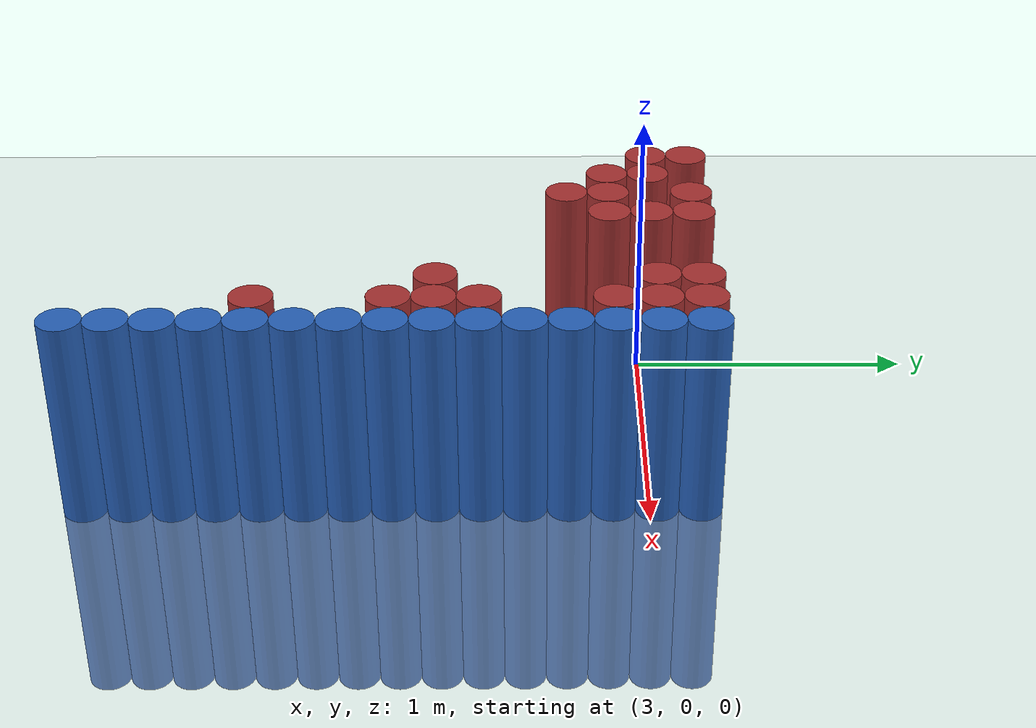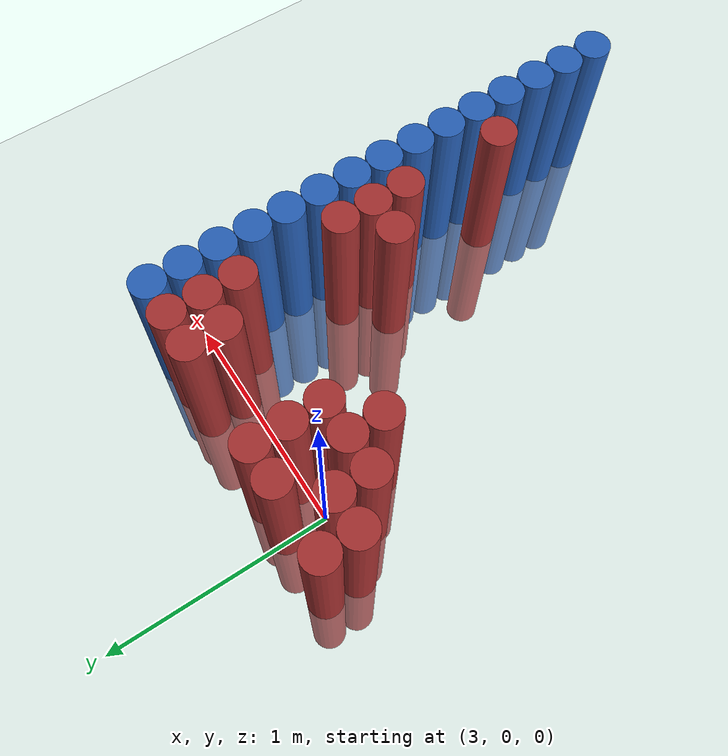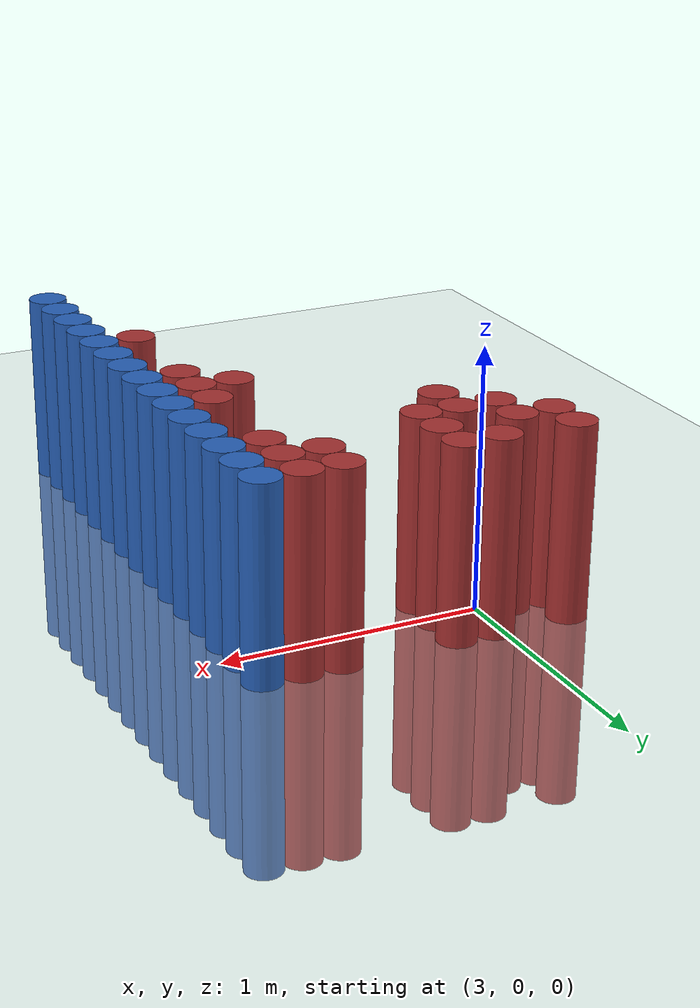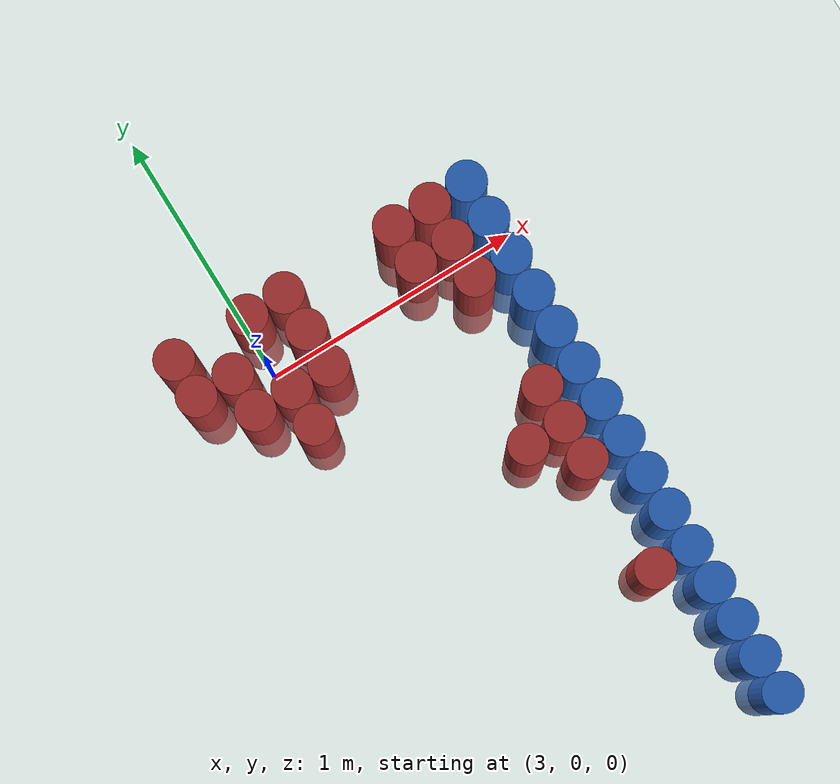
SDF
<sdf version="1.6">
 <world name="default">
  <model name="ground_plane">
   <static>1</static>
   <link name="link">
    <collision name="collision">
     <geometry><plane><normal>0 0 1</normal><size>100 100</size></plane></geometry>
     <surface><friction><ode><mu>100</mu><mu2>50</mu2></ode></friction></surface>
    </collision>
    <visual name="visual">
     <cast_shadows>0</cast_shadows>
     <geometry><plane><normal>0 0 1</normal><size>100 100</size></plane></geometry>
     <material>
      <script><uri>file://media/materials/scripts/gazebo.material</uri><name>Gazebo/Grey</name></script>
     </material>
    </visual>
   </link>
  </model>
  <model name="unit_cylinder_88">
   <static>1</static>
   <pose>3.925000 -1.925000 0.000000 0.000000 0.000000 0.000000</pose>
   <link name="link">
    <inertial>
     <mass>1</mass>
     <inertia><ixx>0.145833</ixx><ixy>0</ixy><ixz>0</ixz><iyy>0.145833</iyy><iyz>0</iyz><izz>0.125</izz></inertia>
    </inertial>
    <collision name="collision">
     <geometry><cylinder><radius>0.075000</radius><length>1.5</length></cylinder></geometry>
    </collision>
    <visual name="visual">
     <geometry><cylinder><radius>0.075000</radius><length>1.5</length></cylinder></geometry>
     <material>
      <ambient>0.152000 0.379000 0.720000 1</ambient>
      <diffuse>0.152000 0.379000 0.720000 1</diffuse>
     </material>
     <material>
      <script><name>Gazebo/Grey</name><uri>file://media/materials/scripts/gazebo.material</uri></script>
     </material>
    </visual>
   </link>
  </model>
  <model name="unit_cylinder_90">
   <static>1</static>
   <pose>3.925000 -1.775000 0.000000 0.000000 0.000000 0.000000</pose>
   <link name="link">
    <inertial>
     <mass>1</mass>
     <inertia><ixx>0.145833</ixx><ixy>0</ixy><ixz>0</ixz><iyy>0.145833</iyy><iyz>0</iyz><izz>0.125</izz></inertia>
    </inertial>
    <collision name="collision">
     <geometry><cylinder><radius>0.075000</radius><length>1.5</length></cylinder></geometry>
    </collision>
    <visual name="visual">
     <geometry><cylinder><radius>0.075000</radius><length>1.5</length></cylinder></geometry>
     <material>
      <ambient>0.152000 0.379000 0.720000 1</ambient>
      <diffuse>0.152000 0.379000 0.720000 1</diffuse>
     </material>
     <material>
      <script><name>Gazebo/Grey</name><uri>file://media/materials/scripts/gazebo.material</uri></script>
     </material>
    </visual>
   </link>
  </model>
  <model name="unit_cylinder_92">
   <static>1</static>
   <pose>3.925000 -1.625000 0.000000 0.000000 0.000000 0.000000</pose>
   <link name="link">
    <inertial>
     <mass>1</mass>
     <inertia><ixx>0.145833</ixx><ixy>0</ixy><ixz>0</ixz><iyy>0.145833</iyy><iyz>0</iyz><izz>0.125</izz></inertia>
    </inertial>
    <collision name="collision">
     <geometry><cylinder><radius>0.075000</radius><length>1.5</length></cylinder></geometry>
    </collision>
    <visual name="visual">
     <geometry><cylinder><radius>0.075000</radius><length>1.5</length></cylinder></geometry>
     <material>
      <ambient>0.152000 0.379000 0.720000 1</ambient>
      <diffuse>0.152000 0.379000 0.720000 1</diffuse>
     </material>
     <material>
      <script><name>Gazebo/Grey</name><uri>file://media/materials/scripts/gazebo.material</uri></script>
     </material>
    </visual>
   </link>
  </model>
  <model name="unit_cylinder_94">
   <static>1</static>
   <pose>3.925000 -1.475000 0.000000 0.000000 0.000000 0.000000</pose>
   <link name="link">
    <inertial>
     <mass>1</mass>
     <inertia><ixx>0.145833</ixx><ixy>0</ixy><ixz>0</ixz><iyy>0.145833</iyy><iyz>0</iyz><izz>0.125</izz></inertia>
    </inertial>
    <collision name="collision">
     <geometry><cylinder><radius>0.075000</radius><length>1.5</length></cylinder></geometry>
    </collision>
    <visual name="visual">
     <geometry><cylinder><radius>0.075000</radius><length>1.5</length></cylinder></geometry>
     <material>
      <ambient>0.152000 0.379000 0.720000 1</ambient>
      <diffuse>0.152000 0.379000 0.720000 1</diffuse>
     </material>
     <material>
      <script><name>Gazebo/Grey</name><uri>file://media/materials/scripts/gazebo.material</uri></script>
     </material>
    </visual>
   </link>
  </model>
  <model name="unit_cylinder_96">
   <static>1</static>
   <pose>3.925000 -1.325000 0.000000 0.000000 0.000000 0.000000</pose>
   <link name="link">
    <inertial>
     <mass>1</mass>
     <inertia><ixx>0.145833</ixx><ixy>0</ixy><ixz>0</ixz><iyy>0.145833</iyy><iyz>0</iyz><izz>0.125</izz></inertia>
    </inertial>
    <collision name="collision">
     <geometry><cylinder><radius>0.075000</radius><length>1.5</length></cylinder></geometry>
    </collision>
    <visual name="visual">
     <geometry><cylinder><radius>0.075000</radius><length>1.5</length></cylinder></geometry>
     <material>
      <ambient>0.152000 0.379000 0.720000 1</ambient>
      <diffuse>0.152000 0.379000 0.720000 1</diffuse>
     </material>
     <material>
      <script><name>Gazebo/Grey</name><uri>file://media/materials/scripts/gazebo.material</uri></script>
     </material>
    </visual>
   </link>
  </model>
  <model name="unit_cylinder_98">
   <static>1</static>
   <pose>3.925000 -1.175000 0.000000 0.000000 0.000000 0.000000</pose>
   <link name="link">
    <inertial>
     <mass>1</mass>
     <inertia><ixx>0.145833</ixx><ixy>0</ixy><ixz>0</ixz><iyy>0.145833</iyy><iyz>0</iyz><izz>0.125</izz></inertia>
    </inertial>
    <collision name="collision">
     <geometry><cylinder><radius>0.075000</radius><length>1.5</length></cylinder></geometry>
    </collision>
    <visual name="visual">
     <geometry><cylinder><radius>0.075000</radius><length>1.5</length></cylinder></geometry>
     <material>
      <ambient>0.152000 0.379000 0.720000 1</ambient>
      <diffuse>0.152000 0.379000 0.720000 1</diffuse>
     </material>
     <material>
      <script><name>Gazebo/Grey</name><uri>file://media/materials/scripts/gazebo.material</uri></script>
     </material>
    </visual>
   </link>
  </model>
  <model name="unit_cylinder_100">
   <static>1</static>
   <pose>3.925000 -1.025000 0.000000 0.000000 0.000000 0.000000</pose>
   <link name="link">
    <inertial>
     <mass>1</mass>
     <inertia><ixx>0.145833</ixx><ixy>0</ixy><ixz>0</ixz><iyy>0.145833</iyy><iyz>0</iyz><izz>0.125</izz></inertia>
    </inertial>
    <collision name="collision">
     <geometry><cylinder><radius>0.075000</radius><length>1.5</length></cylinder></geometry>
    </collision>
    <visual name="visual">
     <geometry><cylinder><radius>0.075000</radius><length>1.5</length></cylinder></geometry>
     <material>
      <ambient>0.152000 0.379000 0.720000 1</ambient>
      <diffuse>0.152000 0.379000 0.720000 1</diffuse>
     </material>
     <material>
      <script><name>Gazebo/Grey</name><uri>file://media/materials/scripts/gazebo.material</uri></script>
     </material>
    </visual>
   </link>
  </model>
  <model name="unit_cylinder_102">
   <static>1</static>
   <pose>3.925000 -0.875000 0.000000 0.000000 0.000000 0.000000</pose>
   <link name="link">
    <inertial>
     <mass>1</mass>
     <inertia><ixx>0.145833</ixx><ixy>0</ixy><ixz>0</ixz><iyy>0.145833</iyy><iyz>0</iyz><izz>0.125</izz></inertia>
    </inertial>
    <collision name="collision">
     <geometry><cylinder><radius>0.075000</radius><length>1.5</length></cylinder></geometry>
    </collision>
    <visual name="visual">
     <geometry><cylinder><radius>0.075000</radius><length>1.5</length></cylinder></geometry>
     <material>
      <ambient>0.152000 0.379000 0.720000 1</ambient>
      <diffuse>0.152000 0.379000 0.720000 1</diffuse>
     </material>
     <material>
      <script><name>Gazebo/Grey</name><uri>file://media/materials/scripts/gazebo.material</uri></script>
     </material>
    </visual>
   </link>
  </model>
  <model name="unit_cylinder_104">
   <static>1</static>
   <pose>3.925000 -0.725000 0.000000 0.000000 0.000000 0.000000</pose>
   <link name="link">
    <inertial>
     <mass>1</mass>
     <inertia><ixx>0.145833</ixx><ixy>0</ixy><ixz>0</ixz><iyy>0.145833</iyy><iyz>0</iyz><izz>0.125</izz></inertia>
    </inertial>
    <collision name="collision">
     <geometry><cylinder><radius>0.075000</radius><length>1.5</length></cylinder></geometry>
    </collision>
    <visual name="visual">
     <geometry><cylinder><radius>0.075000</radius><length>1.5</length></cylinder></geometry>
     <material>
      <ambient>0.152000 0.379000 0.720000 1</ambient>
      <diffuse>0.152000 0.379000 0.720000 1</diffuse>
     </material>
     <material>
      <script><name>Gazebo/Grey</name><uri>file://media/materials/scripts/gazebo.material</uri></script>
     </material>
    </visual>
   </link>
  </model>
  <model name="unit_cylinder_106">
   <static>1</static>
   <pose>3.925000 -0.575000 0.000000 0.000000 0.000000 0.000000</pose>
   <link name="link">
    <inertial>
     <mass>1</mass>
     <inertia><ixx>0.145833</ixx><ixy>0</ixy><ixz>0</ixz><iyy>0.145833</iyy><iyz>0</iyz><izz>0.125</izz></inertia>
    </inertial>
    <collision name="collision">
     <geometry><cylinder><radius>0.075000</radius><length>1.5</length></cylinder></geometry>
    </collision>
    <visual name="visual">
     <geometry><cylinder><radius>0.075000</radius><length>1.5</length></cylinder></geometry>
     <material>
      <ambient>0.152000 0.379000 0.720000 1</ambient>
      <diffuse>0.152000 0.379000 0.720000 1</diffuse>
     </material>
     <material>
      <script><name>Gazebo/Grey</name><uri>file://media/materials/scripts/gazebo.material</uri></script>
     </material>
    </visual>
   </link>
  </model>
  <model name="unit_cylinder_108">
   <static>1</static>
   <pose>3.925000 -0.425000 0.000000 0.000000 0.000000 0.000000</pose>
   <link name="link">
    <inertial>
     <mass>1</mass>
     <inertia><ixx>0.145833</ixx><ixy>0</ixy><ixz>0</ixz><iyy>0.145833</iyy><iyz>0</iyz><izz>0.125</izz></inertia>
    </inertial>
    <collision name="collision">
     <geometry><cylinder><radius>0.075000</radius><length>1.5</length></cylinder></geometry>
    </collision>
    <visual name="visual">
     <geometry><cylinder><radius>0.075000</radius><length>1.5</length></cylinder></geometry>
     <material>
      <ambient>0.152000 0.379000 0.720000 1</ambient>
      <diffuse>0.152000 0.379000 0.720000 1</diffuse>
     </material>
     <material>
      <script><name>Gazebo/Grey</name><uri>file://media/materials/scripts/gazebo.material</uri></script>
     </material>
    </visual>
   </link>
  </model>
  <model name="unit_cylinder_110">
   <static>1</static>
   <pose>3.925000 -0.275000 0.000000 0.000000 0.000000 0.000000</pose>
   <link name="link">
    <inertial>
     <mass>1</mass>
     <inertia><ixx>0.145833</ixx><ixy>0</ixy><ixz>0</ixz><iyy>0.145833</iyy><iyz>0</iyz><izz>0.125</izz></inertia>
    </inertial>
    <collision name="collision">
     <geometry><cylinder><radius>0.075000</radius><length>1.5</length></cylinder></geometry>
    </collision>
    <visual name="visual">
     <geometry><cylinder><radius>0.075000</radius><length>1.5</length></cylinder></geometry>
     <material>
      <ambient>0.152000 0.379000 0.720000 1</ambient>
      <diffuse>0.152000 0.379000 0.720000 1</diffuse>
     </material>
     <material>
      <script><name>Gazebo/Grey</name><uri>file://media/materials/scripts/gazebo.material</uri></script>
     </material>
    </visual>
   </link>
  </model>
  <model name="unit_cylinder_112">
   <static>1</static>
   <pose>3.925000 -0.125000 0.000000 0.000000 0.000000 0.000000</pose>
   <link name="link">
    <inertial>
     <mass>1</mass>
     <inertia><ixx>0.145833</ixx><ixy>0</ixy><ixz>0</ixz><iyy>0.145833</iyy><iyz>0</iyz><izz>0.125</izz></inertia>
    </inertial>
    <collision name="collision">
     <geometry><cylinder><radius>0.075000</radius><length>1.5</length></cylinder></geometry>
    </collision>
    <visual name="visual">
     <geometry><cylinder><radius>0.075000</radius><length>1.5</length></cylinder></geometry>
     <material>
      <ambient>0.152000 0.379000 0.720000 1</ambient>
      <diffuse>0.152000 0.379000 0.720000 1</diffuse>
     </material>
     <material>
      <script><name>Gazebo/Grey</name><uri>file://media/materials/scripts/gazebo.material</uri></script>
     </material>
    </visual>
   </link>
  </model>
  <model name="unit_cylinder_114">
   <static>1</static>
   <pose>3.925000 0.025000 0.000000 0.000000 0.000000 0.000000</pose>
   <link name="link">
    <inertial>
     <mass>1</mass>
     <inertia><ixx>0.145833</ixx><ixy>0</ixy><ixz>0</ixz><iyy>0.145833</iyy><iyz>0</iyz><izz>0.125</izz></inertia>
    </inertial>
    <collision name="collision">
     <geometry><cylinder><radius>0.075000</radius><length>1.5</length></cylinder></geometry>
    </collision>
    <visual name="visual">
     <geometry><cylinder><radius>0.075000</radius><length>1.5</length></cylinder></geometry>
     <material>
      <ambient>0.152000 0.379000 0.720000 1</ambient>
      <diffuse>0.152000 0.379000 0.720000 1</diffuse>
     </material>
     <material>
      <script><name>Gazebo/Grey</name><uri>file://media/materials/scripts/gazebo.material</uri></script>
     </material>
    </visual>
   </link>
  </model>
  <model name="unit_cylinder_116">
   <static>1</static>
   <pose>3.925000 0.175000 0.000000 0.000000 0.000000 0.000000</pose>
   <link name="link">
    <inertial>
     <mass>1</mass>
     <inertia><ixx>0.145833</ixx><ixy>0</ixy><ixz>0</ixz><iyy>0.145833</iyy><iyz>0</iyz><izz>0.125</izz></inertia>
    </inertial>
    <collision name="collision">
     <geometry><cylinder><radius>0.075000</radius><length>1.5</length></cylinder></geometry>
    </collision>
    <visual name="visual">
     <geometry><cylinder><radius>0.075000</radius><length>1.5</length></cylinder></geometry>
     <material>
      <ambient>0.152000 0.379000 0.720000 1</ambient>
      <diffuse>0.152000 0.379000 0.720000 1</diffuse>
     </material>
     <material>
      <script><name>Gazebo/Grey</name><uri>file://media/materials/scripts/gazebo.material</uri></script>
     </material>
    </visual>
   </link>
  </model>
  <model name="unit_cylinder_354">
   <static>1</static>
   <pose>2.725000 0.025000 0.000000 0.000000 0.000000 0.000000</pose>
   <link name="link">
    <inertial>
     <mass>1</mass>
     <inertia><ixx>0.145833</ixx><ixy>0</ixy><ixz>0</ixz><iyy>0.145833</iyy><iyz>0</iyz><izz>0.125</izz></inertia>
    </inertial>
    <collision name="collision">
     <geometry><cylinder><radius>0.075000</radius><length>1.5</length></cylinder></geometry>
    </collision>
    <visual name="visual">
     <geometry><cylinder><radius>0.075000</radius><length>1.5</length></cylinder></geometry>
     <material>
      <ambient>0.648000 0.192000 0.192000 1</ambient>
      <diffuse>0.648000 0.192000 0.192000 1</diffuse>
     </material>
     <material>
      <script><name>Gazebo/Grey</name><uri>file://media/materials/scripts/gazebo.material</uri></script>
     </material>
    </visual>
   </link>
  </model>
  <model name="unit_cylinder_355">
   <static>1</static>
   <pose>2.725000 0.175000 0.000000 0.000000 0.000000 0.000000</pose>
   <link name="link">
    <inertial>
     <mass>1</mass>
     <inertia><ixx>0.145833</ixx><ixy>0</ixy><ixz>0</ixz><iyy>0.145833</iyy><iyz>0</iyz><izz>0.125</izz></inertia>
    </inertial>
    <collision name="collision">
     <geometry><cylinder><radius>0.075000</radius><length>1.5</length></cylinder></geometry>
    </collision>
    <visual name="visual">
     <geometry><cylinder><radius>0.075000</radius><length>1.5</length></cylinder></geometry>
     <material>
      <ambient>0.648000 0.192000 0.192000 1</ambient>
      <diffuse>0.648000 0.192000 0.192000 1</diffuse>
     </material>
     <material>
      <script><name>Gazebo/Grey</name><uri>file://media/materials/scripts/gazebo.material</uri></script>
     </material>
    </visual>
   </link>
  </model>
  <model name="unit_cylinder_357">
   <static>1</static>
   <pose>2.875000 -0.125000 0.000000 0.000000 0.000000 0.000000</pose>
   <link name="link">
    <inertial>
     <mass>1</mass>
     <inertia><ixx>0.145833</ixx><ixy>0</ixy><ixz>0</ixz><iyy>0.145833</iyy><iyz>0</iyz><izz>0.125</izz></inertia>
    </inertial>
    <collision name="collision">
     <geometry><cylinder><radius>0.075000</radius><length>1.5</length></cylinder></geometry>
    </collision>
    <visual name="visual">
     <geometry><cylinder><radius>0.075000</radius><length>1.5</length></cylinder></geometry>
     <material>
      <ambient>0.648000 0.192000 0.192000 1</ambient>
      <diffuse>0.648000 0.192000 0.192000 1</diffuse>
     </material>
     <material>
      <script><name>Gazebo/Grey</name><uri>file://media/materials/scripts/gazebo.material</uri></script>
     </material>
    </visual>
   </link>
  </model>
  <model name="unit_cylinder_358">
   <static>1</static>
   <pose>2.875000 0.025000 0.000000 0.000000 0.000000 0.000000</pose>
   <link name="link">
    <inertial>
     <mass>1</mass>
     <inertia><ixx>0.145833</ixx><ixy>0</ixy><ixz>0</ixz><iyy>0.145833</iyy><iyz>0</iyz><izz>0.125</izz></inertia>
    </inertial>
    <collision name="collision">
     <geometry><cylinder><radius>0.075000</radius><length>1.5</length></cylinder></geometry>
    </collision>
    <visual name="visual">
     <geometry><cylinder><radius>0.075000</radius><length>1.5</length></cylinder></geometry>
     <material>
      <ambient>0.648000 0.192000 0.192000 1</ambient>
      <diffuse>0.648000 0.192000 0.192000 1</diffuse>
     </material>
     <material>
      <script><name>Gazebo/Grey</name><uri>file://media/materials/scripts/gazebo.material</uri></script>
     </material>
    </visual>
   </link>
  </model>
  <model name="unit_cylinder_363">
   <static>1</static>
   <pose>3.025000 -0.275000 0.000000 0.000000 0.000000 0.000000</pose>
   <link name="link">
    <inertial>
     <mass>1</mass>
     <inertia><ixx>0.145833</ixx><ixy>0</ixy><ixz>0</ixz><iyy>0.145833</iyy><iyz>0</iyz><izz>0.125</izz></inertia>
    </inertial>
    <collision name="collision">
     <geometry><cylinder><radius>0.075000</radius><length>1.5</length></cylinder></geometry>
    </collision>
    <visual name="visual">
     <geometry><cylinder><radius>0.075000</radius><length>1.5</length></cylinder></geometry>
     <material>
      <ambient>0.648000 0.192000 0.192000 1</ambient>
      <diffuse>0.648000 0.192000 0.192000 1</diffuse>
     </material>
     <material>
      <script><name>Gazebo/Grey</name><uri>file://media/materials/scripts/gazebo.material</uri></script>
     </material>
    </visual>
   </link>
  </model>
  <model name="unit_cylinder_364">
   <static>1</static>
   <pose>3.025000 -0.125000 0.000000 0.000000 0.000000 0.000000</pose>
   <link name="link">
    <inertial>
     <mass>1</mass>
     <inertia><ixx>0.145833</ixx><ixy>0</ixy><ixz>0</ixz><iyy>0.145833</iyy><iyz>0</iyz><izz>0.125</izz></inertia>
    </inertial>
    <collision name="collision">
     <geometry><cylinder><radius>0.075000</radius><length>1.5</length></cylinder></geometry>
    </collision>
    <visual name="visual">
     <geometry><cylinder><radius>0.075000</radius><length>1.5</length></cylinder></geometry>
     <material>
      <ambient>0.648000 0.192000 0.192000 1</ambient>
      <diffuse>0.648000 0.192000 0.192000 1</diffuse>
     </material>
     <material>
      <script><name>Gazebo/Grey</name><uri>file://media/materials/scripts/gazebo.material</uri></script>
     </material>
    </visual>
   </link>
  </model>
  <model name="unit_cylinder_365">
   <static>1</static>
   <pose>3.025000 0.175000 0.000000 0.000000 0.000000 0.000000</pose>
   <link name="link">
    <inertial>
     <mass>1</mass>
     <inertia><ixx>0.145833</ixx><ixy>0</ixy><ixz>0</ixz><iyy>0.145833</iyy><iyz>0</iyz><izz>0.125</izz></inertia>
    </inertial>
    <collision name="collision">
     <geometry><cylinder><radius>0.075000</radius><length>1.5</length></cylinder></geometry>
    </collision>
    <visual name="visual">
     <geometry><cylinder><radius>0.075000</radius><length>1.5</length></cylinder></geometry>
     <material>
      <ambient>0.648000 0.192000 0.192000 1</ambient>
      <diffuse>0.648000 0.192000 0.192000 1</diffuse>
     </material>
     <material>
      <script><name>Gazebo/Grey</name><uri>file://media/materials/scripts/gazebo.material</uri></script>
     </material>
    </visual>
   </link>
  </model>
  <model name="unit_cylinder_370">
   <static>1</static>
   <pose>3.175000 -0.125000 0.000000 0.000000 0.000000 0.000000</pose>
   <link name="link">
    <inertial>
     <mass>1</mass>
     <inertia><ixx>0.145833</ixx><ixy>0</ixy><ixz>0</ixz><iyy>0.145833</iyy><iyz>0</iyz><izz>0.125</izz></inertia>
    </inertial>
    <collision name="collision">
     <geometry><cylinder><radius>0.075000</radius><length>1.5</length></cylinder></geometry>
    </collision>
    <visual name="visual">
     <geometry><cylinder><radius>0.075000</radius><length>1.5</length></cylinder></geometry>
     <material>
      <ambient>0.648000 0.192000 0.192000 1</ambient>
      <diffuse>0.648000 0.192000 0.192000 1</diffuse>
     </material>
     <material>
      <script><name>Gazebo/Grey</name><uri>file://media/materials/scripts/gazebo.material</uri></script>
     </material>
    </visual>
   </link>
  </model>
  <model name="unit_cylinder_371">
   <static>1</static>
   <pose>3.175000 0.025000 0.000000 0.000000 0.000000 0.000000</pose>
   <link name="link">
    <inertial>
     <mass>1</mass>
     <inertia><ixx>0.145833</ixx><ixy>0</ixy><ixz>0</ixz><iyy>0.145833</iyy><iyz>0</iyz><izz>0.125</izz></inertia>
    </inertial>
    <collision name="collision">
     <geometry><cylinder><radius>0.075000</radius><length>1.5</length></cylinder></geometry>
    </collision>
    <visual name="visual">
     <geometry><cylinder><radius>0.075000</radius><length>1.5</length></cylinder></geometry>
     <material>
      <ambient>0.648000 0.192000 0.192000 1</ambient>
      <diffuse>0.648000 0.192000 0.192000 1</diffuse>
     </material>
     <material>
      <script><name>Gazebo/Grey</name><uri>file://media/materials/scripts/gazebo.material</uri></script>
     </material>
    </visual>
   </link>
  </model>
  <model name="unit_cylinder_372">
   <static>1</static>
   <pose>3.175000 0.175000 0.000000 0.000000 0.000000 0.000000</pose>
   <link name="link">
    <inertial>
     <mass>1</mass>
     <inertia><ixx>0.145833</ixx><ixy>0</ixy><ixz>0</ixz><iyy>0.145833</iyy><iyz>0</iyz><izz>0.125</izz></inertia>
    </inertial>
    <collision name="collision">
     <geometry><cylinder><radius>0.075000</radius><length>1.5</length></cylinder></geometry>
    </collision>
    <visual name="visual">
     <geometry><cylinder><radius>0.075000</radius><length>1.5</length></cylinder></geometry>
     <material>
      <ambient>0.648000 0.192000 0.192000 1</ambient>
      <diffuse>0.648000 0.192000 0.192000 1</diffuse>
     </material>
     <material>
      <script><name>Gazebo/Grey</name><uri>file://media/materials/scripts/gazebo.material</uri></script>
     </material>
    </visual>
   </link>
  </model>
  <model name="unit_cylinder_374">
   <static>1</static>
   <pose>3.625000 -0.725000 0.000000 0.000000 0.000000 0.000000</pose>
   <link name="link">
    <inertial>
     <mass>1</mass>
     <inertia><ixx>0.145833</ixx><ixy>0</ixy><ixz>0</ixz><iyy>0.145833</iyy><iyz>0</iyz><izz>0.125</izz></inertia>
    </inertial>
    <collision name="collision">
     <geometry><cylinder><radius>0.075000</radius><length>1.5</length></cylinder></geometry>
    </collision>
    <visual name="visual">
     <geometry><cylinder><radius>0.075000</radius><length>1.5</length></cylinder></geometry>
     <material>
      <ambient>0.648000 0.192000 0.192000 1</ambient>
      <diffuse>0.648000 0.192000 0.192000 1</diffuse>
     </material>
     <material>
      <script><name>Gazebo/Grey</name><uri>file://media/materials/scripts/gazebo.material</uri></script>
     </material>
    </visual>
   </link>
  </model>
  <model name="unit_cylinder_375">
   <static>1</static>
   <pose>3.625000 0.025000 0.000000 0.000000 0.000000 0.000000</pose>
   <link name="link">
    <inertial>
     <mass>1</mass>
     <inertia><ixx>0.145833</ixx><ixy>0</ixy><ixz>0</ixz><iyy>0.145833</iyy><iyz>0</iyz><izz>0.125</izz></inertia>
    </inertial>
    <collision name="collision">
     <geometry><cylinder><radius>0.075000</radius><length>1.5</length></cylinder></geometry>
    </collision>
    <visual name="visual">
     <geometry><cylinder><radius>0.075000</radius><length>1.5</length></cylinder></geometry>
     <material>
      <ambient>0.648000 0.192000 0.192000 1</ambient>
      <diffuse>0.648000 0.192000 0.192000 1</diffuse>
     </material>
     <material>
      <script><name>Gazebo/Grey</name><uri>file://media/materials/scripts/gazebo.material</uri></script>
     </material>
    </visual>
   </link>
  </model>
  <model name="unit_cylinder_376">
   <static>1</static>
   <pose>3.625000 0.175000 0.000000 0.000000 0.000000 0.000000</pose>
   <link name="link">
    <inertial>
     <mass>1</mass>
     <inertia><ixx>0.145833</ixx><ixy>0</ixy><ixz>0</ixz><iyy>0.145833</iyy><iyz>0</iyz><izz>0.125</izz></inertia>
    </inertial>
    <collision name="collision">
     <geometry><cylinder><radius>0.075000</radius><length>1.5</length></cylinder></geometry>
    </collision>
    <visual name="visual">
     <geometry><cylinder><radius>0.075000</radius><length>1.5</length></cylinder></geometry>
     <material>
      <ambient>0.648000 0.192000 0.192000 1</ambient>
      <diffuse>0.648000 0.192000 0.192000 1</diffuse>
     </material>
     <material>
      <script><name>Gazebo/Grey</name><uri>file://media/materials/scripts/gazebo.material</uri></script>
     </material>
    </visual>
   </link>
  </model>
  <model name="unit_cylinder_378">
   <static>1</static>
   <pose>3.775000 -1.325000 0.000000 0.000000 0.000000 0.000000</pose>
   <link name="link">
    <inertial>
     <mass>1</mass>
     <inertia><ixx>0.145833</ixx><ixy>0</ixy><ixz>0</ixz><iyy>0.145833</iyy><iyz>0</iyz><izz>0.125</izz></inertia>
    </inertial>
    <collision name="collision">
     <geometry><cylinder><radius>0.075000</radius><length>1.5</length></cylinder></geometry>
    </collision>
    <visual name="visual">
     <geometry><cylinder><radius>0.075000</radius><length>1.5</length></cylinder></geometry>
     <material>
      <ambient>0.648000 0.192000 0.192000 1</ambient>
      <diffuse>0.648000 0.192000 0.192000 1</diffuse>
     </material>
     <material>
      <script><name>Gazebo/Grey</name><uri>file://media/materials/scripts/gazebo.material</uri></script>
     </material>
    </visual>
   </link>
  </model>
  <model name="unit_cylinder_379">
   <static>1</static>
   <pose>3.775000 -0.875000 0.000000 0.000000 0.000000 0.000000</pose>
   <link name="link">
    <inertial>
     <mass>1</mass>
     <inertia><ixx>0.145833</ixx><ixy>0</ixy><ixz>0</ixz><iyy>0.145833</iyy><iyz>0</iyz><izz>0.125</izz></inertia>
    </inertial>
    <collision name="collision">
     <geometry><cylinder><radius>0.075000</radius><length>1.5</length></cylinder></geometry>
    </collision>
    <visual name="visual">
     <geometry><cylinder><radius>0.075000</radius><length>1.5</length></cylinder></geometry>
     <material>
      <ambient>0.648000 0.192000 0.192000 1</ambient>
      <diffuse>0.648000 0.192000 0.192000 1</diffuse>
     </material>
     <material>
      <script><name>Gazebo/Grey</name><uri>file://media/materials/scripts/gazebo.material</uri></script>
     </material>
    </visual>
   </link>
  </model>
  <model name="unit_cylinder_380">
   <static>1</static>
   <pose>3.775000 -0.725000 0.000000 0.000000 0.000000 0.000000</pose>
   <link name="link">
    <inertial>
     <mass>1</mass>
     <inertia><ixx>0.145833</ixx><ixy>0</ixy><ixz>0</ixz><iyy>0.145833</iyy><iyz>0</iyz><izz>0.125</izz></inertia>
    </inertial>
    <collision name="collision">
     <geometry><cylinder><radius>0.075000</radius><length>1.5</length></cylinder></geometry>
    </collision>
    <visual name="visual">
     <geometry><cylinder><radius>0.075000</radius><length>1.5</length></cylinder></geometry>
     <material>
      <ambient>0.648000 0.192000 0.192000 1</ambient>
      <diffuse>0.648000 0.192000 0.192000 1</diffuse>
     </material>
     <material>
      <script><name>Gazebo/Grey</name><uri>file://media/materials/scripts/gazebo.material</uri></script>
     </material>
    </visual>
   </link>
  </model>
  <model name="unit_cylinder_381">
   <static>1</static>
   <pose>3.775000 -0.575000 0.000000 0.000000 0.000000 0.000000</pose>
   <link name="link">
    <inertial>
     <mass>1</mass>
     <inertia><ixx>0.145833</ixx><ixy>0</ixy><ixz>0</ixz><iyy>0.145833</iyy><iyz>0</iyz><izz>0.125</izz></inertia>
    </inertial>
    <collision name="collision">
     <geometry><cylinder><radius>0.075000</radius><length>1.5</length></cylinder></geometry>
    </collision>
    <visual name="visual">
     <geometry><cylinder><radius>0.075000</radius><length>1.5</length></cylinder></geometry>
     <material>
      <ambient>0.648000 0.192000 0.192000 1</ambient>
      <diffuse>0.648000 0.192000 0.192000 1</diffuse>
     </material>
     <material>
      <script><name>Gazebo/Grey</name><uri>file://media/materials/scripts/gazebo.material</uri></script>
     </material>
    </visual>
   </link>
  </model>
  <model name="unit_cylinder_382">
   <static>1</static>
   <pose>3.775000 -0.125000 0.000000 0.000000 0.000000 0.000000</pose>
   <link name="link">
    <inertial>
     <mass>1</mass>
     <inertia><ixx>0.145833</ixx><ixy>0</ixy><ixz>0</ixz><iyy>0.145833</iyy><iyz>0</iyz><izz>0.125</izz></inertia>
    </inertial>
    <collision name="collision">
     <geometry><cylinder><radius>0.075000</radius><length>1.5</length></cylinder></geometry>
    </collision>
    <visual name="visual">
     <geometry><cylinder><radius>0.075000</radius><length>1.5</length></cylinder></geometry>
     <material>
      <ambient>0.648000 0.192000 0.192000 1</ambient>
      <diffuse>0.648000 0.192000 0.192000 1</diffuse>
     </material>
     <material>
      <script><name>Gazebo/Grey</name><uri>file://media/materials/scripts/gazebo.material</uri></script>
     </material>
    </visual>
   </link>
  </model>
  <model name="unit_cylinder_383">
   <static>1</static>
   <pose>3.775000 0.025000 0.000000 0.000000 0.000000 0.000000</pose>
   <link name="link">
    <inertial>
     <mass>1</mass>
     <inertia><ixx>0.145833</ixx><ixy>0</ixy><ixz>0</ixz><iyy>0.145833</iyy><iyz>0</iyz><izz>0.125</izz></inertia>
    </inertial>
    <collision name="collision">
     <geometry><cylinder><radius>0.075000</radius><length>1.5</length></cylinder></geometry>
    </collision>
    <visual name="visual">
     <geometry><cylinder><radius>0.075000</radius><length>1.5</length></cylinder></geometry>
     <material>
      <ambient>0.648000 0.192000 0.192000 1</ambient>
      <diffuse>0.648000 0.192000 0.192000 1</diffuse>
     </material>
     <material>
      <script><name>Gazebo/Grey</name><uri>file://media/materials/scripts/gazebo.material</uri></script>
     </material>
    </visual>
   </link>
  </model>
  <model name="unit_cylinder_384">
   <static>1</static>
   <pose>3.775000 0.175000 0.000000 0.000000 0.000000 0.000000</pose>
   <link name="link">
    <inertial>
     <mass>1</mass>
     <inertia><ixx>0.145833</ixx><ixy>0</ixy><ixz>0</ixz><iyy>0.145833</iyy><iyz>0</iyz><izz>0.125</izz></inertia>
    </inertial>
    <collision name="collision">
     <geometry><cylinder><radius>0.075000</radius><length>1.5</length></cylinder></geometry>
    </collision>
    <visual name="visual">
     <geometry><cylinder><radius>0.075000</radius><length>1.5</length></cylinder></geometry>
     <material>
      <ambient>0.648000 0.192000 0.192000 1</ambient>
      <diffuse>0.648000 0.192000 0.192000 1</diffuse>
     </material>
     <material>
      <script><name>Gazebo/Grey</name><uri>file://media/materials/scripts/gazebo.material</uri></script>
     </material>
    </visual>
   </link>
  </model>
  <model name="unit_cylinder_394">
   <static>1</static>
   <pose>3.925000 -1.925000 0.000000 0.000000 0.000000 0.000000</pose>
   <link name="link">
    <inertial>
     <mass>1</mass>
     <inertia><ixx>0.145833</ixx><ixy>0</ixy><ixz>0</ixz><iyy>0.145833</iyy><iyz>0</iyz><izz>0.125</izz></inertia>
    </inertial>
    <collision name="collision">
     <geometry><cylinder><radius>0.075000</radius><length>1.5</length></cylinder></geometry>
    </collision>
    <visual name="visual">
     <geometry><cylinder><radius>0.075000</radius><length>1.5</length></cylinder></geometry>
     <material>
      <ambient>0.152000 0.379000 0.720000 1</ambient>
      <diffuse>0.152000 0.379000 0.720000 1</diffuse>
     </material>
     <material>
      <script><name>Gazebo/Grey</name><uri>file://media/materials/scripts/gazebo.material</uri></script>
     </material>
    </visual>
   </link>
  </model>
  <model name="unit_cylinder_395">
   <static>1</static>
   <pose>3.925000 -1.775000 0.000000 0.000000 0.000000 0.000000</pose>
   <link name="link">
    <inertial>
     <mass>1</mass>
     <inertia><ixx>0.145833</ixx><ixy>0</ixy><ixz>0</ixz><iyy>0.145833</iyy><iyz>0</iyz><izz>0.125</izz></inertia>
    </inertial>
    <collision name="collision">
     <geometry><cylinder><radius>0.075000</radius><length>1.5</length></cylinder></geometry>
    </collision>
    <visual name="visual">
     <geometry><cylinder><radius>0.075000</radius><length>1.5</length></cylinder></geometry>
     <material>
      <ambient>0.152000 0.379000 0.720000 1</ambient>
      <diffuse>0.152000 0.379000 0.720000 1</diffuse>
     </material>
     <material>
      <script><name>Gazebo/Grey</name><uri>file://media/materials/scripts/gazebo.material</uri></script>
     </material>
    </visual>
   </link>
  </model>
  <model name="unit_cylinder_396">
   <static>1</static>
   <pose>3.925000 -1.625000 0.000000 0.000000 0.000000 0.000000</pose>
   <link name="link">
    <inertial>
     <mass>1</mass>
     <inertia><ixx>0.145833</ixx><ixy>0</ixy><ixz>0</ixz><iyy>0.145833</iyy><iyz>0</iyz><izz>0.125</izz></inertia>
    </inertial>
    <collision name="collision">
     <geometry><cylinder><radius>0.075000</radius><length>1.5</length></cylinder></geometry>
    </collision>
    <visual name="visual">
     <geometry><cylinder><radius>0.075000</radius><length>1.5</length></cylinder></geometry>
     <material>
      <ambient>0.152000 0.379000 0.720000 1</ambient>
      <diffuse>0.152000 0.379000 0.720000 1</diffuse>
     </material>
     <material>
      <script><name>Gazebo/Grey</name><uri>file://media/materials/scripts/gazebo.material</uri></script>
     </material>
    </visual>
   </link>
  </model>
  <model name="unit_cylinder_397">
   <static>1</static>
   <pose>3.925000 -1.475000 0.000000 0.000000 0.000000 0.000000</pose>
   <link name="link">
    <inertial>
     <mass>1</mass>
     <inertia><ixx>0.145833</ixx><ixy>0</ixy><ixz>0</ixz><iyy>0.145833</iyy><iyz>0</iyz><izz>0.125</izz></inertia>
    </inertial>
    <collision name="collision">
     <geometry><cylinder><radius>0.075000</radius><length>1.5</length></cylinder></geometry>
    </collision>
    <visual name="visual">
     <geometry><cylinder><radius>0.075000</radius><length>1.5</length></cylinder></geometry>
     <material>
      <ambient>0.152000 0.379000 0.720000 1</ambient>
      <diffuse>0.152000 0.379000 0.720000 1</diffuse>
     </material>
     <material>
      <script><name>Gazebo/Grey</name><uri>file://media/materials/scripts/gazebo.material</uri></script>
     </material>
    </visual>
   </link>
  </model>
  <model name="unit_cylinder_398">
   <static>1</static>
   <pose>3.925000 -1.325000 0.000000 0.000000 0.000000 0.000000</pose>
   <link name="link">
    <inertial>
     <mass>1</mass>
     <inertia><ixx>0.145833</ixx><ixy>0</ixy><ixz>0</ixz><iyy>0.145833</iyy><iyz>0</iyz><izz>0.125</izz></inertia>
    </inertial>
    <collision name="collision">
     <geometry><cylinder><radius>0.075000</radius><length>1.5</length></cylinder></geometry>
    </collision>
    <visual name="visual">
     <geometry><cylinder><radius>0.075000</radius><length>1.5</length></cylinder></geometry>
     <material>
      <ambient>0.152000 0.379000 0.720000 1</ambient>
      <diffuse>0.152000 0.379000 0.720000 1</diffuse>
     </material>
     <material>
      <script><name>Gazebo/Grey</name><uri>file://media/materials/scripts/gazebo.material</uri></script>
     </material>
    </visual>
   </link>
  </model>
  <model name="unit_cylinder_399">
   <static>1</static>
   <pose>3.925000 -1.175000 0.000000 0.000000 0.000000 0.000000</pose>
   <link name="link">
    <inertial>
     <mass>1</mass>
     <inertia><ixx>0.145833</ixx><ixy>0</ixy><ixz>0</ixz><iyy>0.145833</iyy><iyz>0</iyz><izz>0.125</izz></inertia>
    </inertial>
    <collision name="collision">
     <geometry><cylinder><radius>0.075000</radius><length>1.5</length></cylinder></geometry>
    </collision>
    <visual name="visual">
     <geometry><cylinder><radius>0.075000</radius><length>1.5</length></cylinder></geometry>
     <material>
      <ambient>0.152000 0.379000 0.720000 1</ambient>
      <diffuse>0.152000 0.379000 0.720000 1</diffuse>
     </material>
     <material>
      <script><name>Gazebo/Grey</name><uri>file://media/materials/scripts/gazebo.material</uri></script>
     </material>
    </visual>
   </link>
  </model>
  <model name="unit_cylinder_400">
   <static>1</static>
   <pose>3.925000 -1.025000 0.000000 0.000000 0.000000 0.000000</pose>
   <link name="link">
    <inertial>
     <mass>1</mass>
     <inertia><ixx>0.145833</ixx><ixy>0</ixy><ixz>0</ixz><iyy>0.145833</iyy><iyz>0</iyz><izz>0.125</izz></inertia>
    </inertial>
    <collision name="collision">
     <geometry><cylinder><radius>0.075000</radius><length>1.5</length></cylinder></geometry>
    </collision>
    <visual name="visual">
     <geometry><cylinder><radius>0.075000</radius><length>1.5</length></cylinder></geometry>
     <material>
      <ambient>0.152000 0.379000 0.720000 1</ambient>
      <diffuse>0.152000 0.379000 0.720000 1</diffuse>
     </material>
     <material>
      <script><name>Gazebo/Grey</name><uri>file://media/materials/scripts/gazebo.material</uri></script>
     </material>
    </visual>
   </link>
  </model>
  <model name="unit_cylinder_401">
   <static>1</static>
   <pose>3.925000 -0.875000 0.000000 0.000000 0.000000 0.000000</pose>
   <link name="link">
    <inertial>
     <mass>1</mass>
     <inertia><ixx>0.145833</ixx><ixy>0</ixy><ixz>0</ixz><iyy>0.145833</iyy><iyz>0</iyz><izz>0.125</izz></inertia>
    </inertial>
    <collision name="collision">
     <geometry><cylinder><radius>0.075000</radius><length>1.5</length></cylinder></geometry>
    </collision>
    <visual name="visual">
     <geometry><cylinder><radius>0.075000</radius><length>1.5</length></cylinder></geometry>
     <material>
      <ambient>0.152000 0.379000 0.720000 1</ambient>
      <diffuse>0.152000 0.379000 0.720000 1</diffuse>
     </material>
     <material>
      <script><name>Gazebo/Grey</name><uri>file://media/materials/scripts/gazebo.material</uri></script>
     </material>
    </visual>
   </link>
  </model>
  <model name="unit_cylinder_402">
   <static>1</static>
   <pose>3.925000 -0.725000 0.000000 0.000000 0.000000 0.000000</pose>
   <link name="link">
    <inertial>
     <mass>1</mass>
     <inertia><ixx>0.145833</ixx><ixy>0</ixy><ixz>0</ixz><iyy>0.145833</iyy><iyz>0</iyz><izz>0.125</izz></inertia>
    </inertial>
    <collision name="collision">
     <geometry><cylinder><radius>0.075000</radius><length>1.5</length></cylinder></geometry>
    </collision>
    <visual name="visual">
     <geometry><cylinder><radius>0.075000</radius><length>1.5</length></cylinder></geometry>
     <material>
      <ambient>0.152000 0.379000 0.720000 1</ambient>
      <diffuse>0.152000 0.379000 0.720000 1</diffuse>
     </material>
     <material>
      <script><name>Gazebo/Grey</name><uri>file://media/materials/scripts/gazebo.material</uri></script>
     </material>
    </visual>
   </link>
  </model>
  <model name="unit_cylinder_403">
   <static>1</static>
   <pose>3.925000 -0.575000 0.000000 0.000000 0.000000 0.000000</pose>
   <link name="link">
    <inertial>
     <mass>1</mass>
     <inertia><ixx>0.145833</ixx><ixy>0</ixy><ixz>0</ixz><iyy>0.145833</iyy><iyz>0</iyz><izz>0.125</izz></inertia>
    </inertial>
    <collision name="collision">
     <geometry><cylinder><radius>0.075000</radius><length>1.5</length></cylinder></geometry>
    </collision>
    <visual name="visual">
     <geometry><cylinder><radius>0.075000</radius><length>1.5</length></cylinder></geometry>
     <material>
      <ambient>0.152000 0.379000 0.720000 1</ambient>
      <diffuse>0.152000 0.379000 0.720000 1</diffuse>
     </material>
     <material>
      <script><name>Gazebo/Grey</name><uri>file://media/materials/scripts/gazebo.material</uri></script>
     </material>
    </visual>
   </link>
  </model>
  <model name="unit_cylinder_404">
   <static>1</static>
   <pose>3.925000 -0.425000 0.000000 0.000000 0.000000 0.000000</pose>
   <link name="link">
    <inertial>
     <mass>1</mass>
     <inertia><ixx>0.145833</ixx><ixy>0</ixy><ixz>0</ixz><iyy>0.145833</iyy><iyz>0</iyz><izz>0.125</izz></inertia>
    </inertial>
    <collision name="collision">
     <geometry><cylinder><radius>0.075000</radius><length>1.5</length></cylinder></geometry>
    </collision>
    <visual name="visual">
     <geometry><cylinder><radius>0.075000</radius><length>1.5</length></cylinder></geometry>
     <material>
      <ambient>0.152000 0.379000 0.720000 1</ambient>
      <diffuse>0.152000 0.379000 0.720000 1</diffuse>
     </material>
     <material>
      <script><name>Gazebo/Grey</name><uri>file://media/materials/scripts/gazebo.material</uri></script>
     </material>
    </visual>
   </link>
  </model>
  <model name="unit_cylinder_405">
   <static>1</static>
   <pose>3.925000 -0.275000 0.000000 0.000000 0.000000 0.000000</pose>
   <link name="link">
    <inertial>
     <mass>1</mass>
     <inertia><ixx>0.145833</ixx><ixy>0</ixy><ixz>0</ixz><iyy>0.145833</iyy><iyz>0</iyz><izz>0.125</izz></inertia>
    </inertial>
    <collision name="collision">
     <geometry><cylinder><radius>0.075000</radius><length>1.5</length></cylinder></geometry>
    </collision>
    <visual name="visual">
     <geometry><cylinder><radius>0.075000</radius><length>1.5</length></cylinder></geometry>
     <material>
      <ambient>0.152000 0.379000 0.720000 1</ambient>
      <diffuse>0.152000 0.379000 0.720000 1</diffuse>
     </material>
     <material>
      <script><name>Gazebo/Grey</name><uri>file://media/materials/scripts/gazebo.material</uri></script>
     </material>
    </visual>
   </link>
  </model>
  <model name="unit_cylinder_406">
   <static>1</static>
   <pose>3.925000 -0.125000 0.000000 0.000000 0.000000 0.000000</pose>
   <link name="link">
    <inertial>
     <mass>1</mass>
     <inertia><ixx>0.145833</ixx><ixy>0</ixy><ixz>0</ixz><iyy>0.145833</iyy><iyz>0</iyz><izz>0.125</izz></inertia>
    </inertial>
    <collision name="collision">
     <geometry><cylinder><radius>0.075000</radius><length>1.5</length></cylinder></geometry>
    </collision>
    <visual name="visual">
     <geometry><cylinder><radius>0.075000</radius><length>1.5</length></cylinder></geometry>
     <material>
      <ambient>0.152000 0.379000 0.720000 1</ambient>
      <diffuse>0.152000 0.379000 0.720000 1</diffuse>
     </material>
     <material>
      <script><name>Gazebo/Grey</name><uri>file://media/materials/scripts/gazebo.material</uri></script>
     </material>
    </visual>
   </link>
  </model>
  <model name="unit_cylinder_407">
   <static>1</static>
   <pose>3.925000 0.025000 0.000000 0.000000 0.000000 0.000000</pose>
   <link name="link">
    <inertial>
     <mass>1</mass>
     <inertia><ixx>0.145833</ixx><ixy>0</ixy><ixz>0</ixz><iyy>0.145833</iyy><iyz>0</iyz><izz>0.125</izz></inertia>
    </inertial>
    <collision name="collision">
     <geometry><cylinder><radius>0.075000</radius><length>1.5</length></cylinder></geometry>
    </collision>
    <visual name="visual">
     <geometry><cylinder><radius>0.075000</radius><length>1.5</length></cylinder></geometry>
     <material>
      <ambient>0.152000 0.379000 0.720000 1</ambient>
      <diffuse>0.152000 0.379000 0.720000 1</diffuse>
     </material>
     <material>
      <script><name>Gazebo/Grey</name><uri>file://media/materials/scripts/gazebo.material</uri></script>
     </material>
    </visual>
   </link>
  </model>
 </world>
</sdf>
